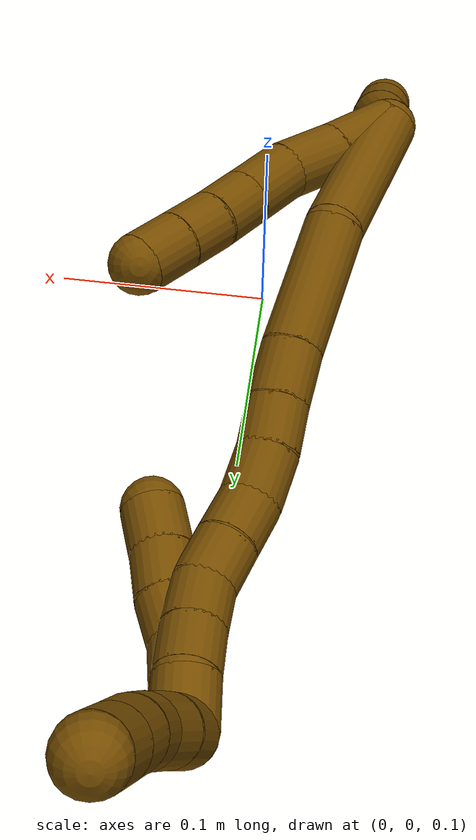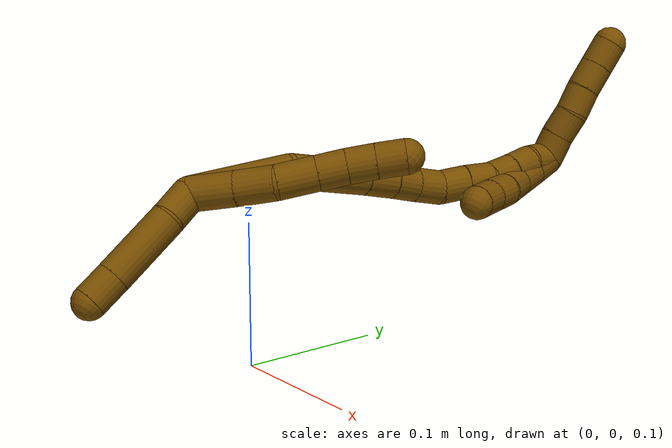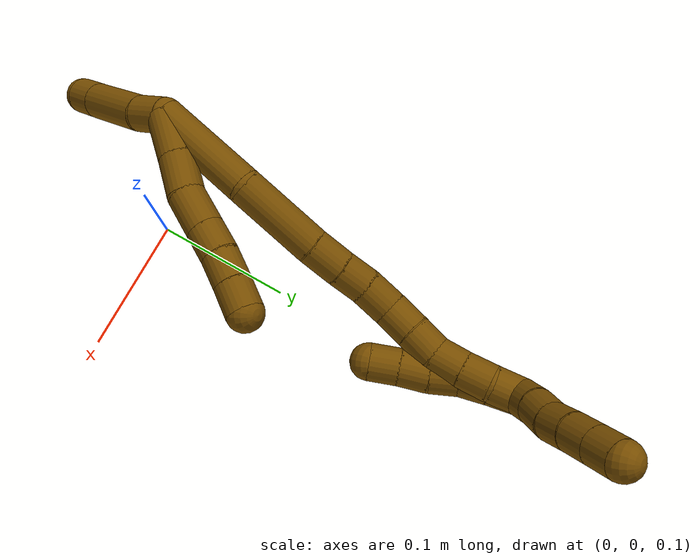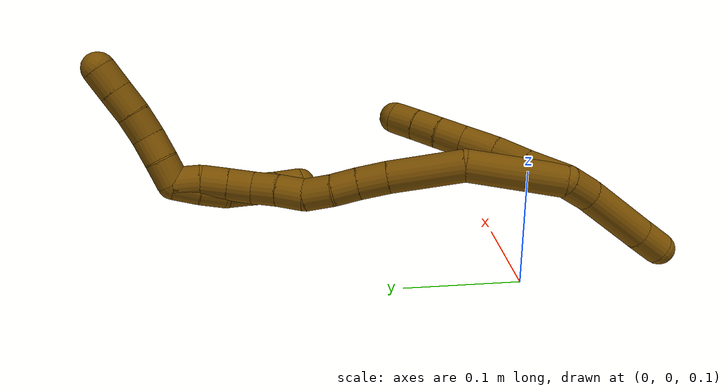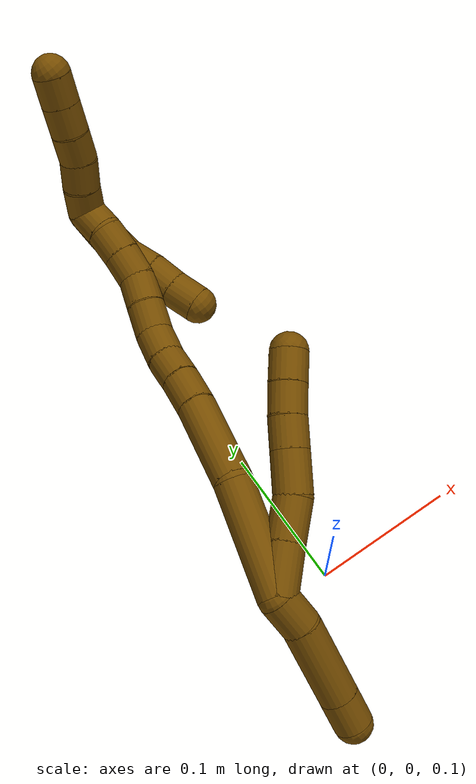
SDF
<sdf version="1.7">
 <world name="default">
  <model name="12">
   <static>0</static>
   <link name="12">
    <collision name="collision-cylinder-e_1_2_8">
     <pose>0.002856 0.013754 0.008246 -1.03072 0.17625 -0.100007</pose>
     <geometry><cylinder><radius>0.0125</radius><length>0.032578</length></cylinder></geometry>
     <surface>
      <friction><ode><mu>1.16</mu><mu2>1.16</mu2><slip1>0</slip1><slip2>0</slip2></ode></friction>
      <contact><ode><kp>1e+06</kp><kd>1</kd><max_vel>0</max_vel><min_depth>0.001</min_depth></ode></contact>
     </surface>
    </collision>
    <visual name="visual-cylinder-e_1_2_8">
     <pose>0.002856 0.013754 0.008246 -1.03072 0.17625 -0.100007</pose>
     <geometry><cylinder><radius>0.0125</radius><length>0.032578</length></cylinder></geometry>
     <material><ambient>0.466667 0.301961 0 1</ambient></material>
    </visual>
    <collision name="collision-cylinder-e_2_8_9">
     <pose>0.008718 0.039119 0.02358 -1.02273 0.217477 -0.122367</pose>
     <geometry><cylinder><radius>0.0125</radius><length>0.027861</length></cylinder></geometry>
     <surface>
      <friction><ode><mu>1.16</mu><mu2>1.16</mu2><slip1>0</slip1><slip2>0</slip2></ode></friction>
      <contact><ode><kp>1e+06</kp><kd>1</kd><max_vel>0</max_vel><min_depth>0.001</min_depth></ode></contact>
     </surface>
    </collision>
    <visual name="visual-cylinder-e_2_8_9">
     <pose>0.008718 0.039119 0.02358 -1.02273 0.217477 -0.122367</pose>
     <geometry><cylinder><radius>0.0125</radius><length>0.027861</length></cylinder></geometry>
     <material><ambient>0.466667 0.301961 0 1</ambient></material>
    </visual>
    <collision name="collision-cylinder-e_3_9_10">
     <pose>0.012378 0.061212 0.03983 -0.852505 0.04698 -0.021337</pose>
     <geometry><cylinder><radius>0.0125</radius><length>0.027877</length></cylinder></geometry>
     <surface>
      <friction><ode><mu>1.16</mu><mu2>1.16</mu2><slip1>0</slip1><slip2>0</slip2></ode></friction>
      <contact><ode><kp>1e+06</kp><kd>1</kd><max_vel>0</max_vel><min_depth>0.001</min_depth></ode></contact>
     </surface>
    </collision>
    <visual name="visual-cylinder-e_3_9_10">
     <pose>0.012378 0.061212 0.03983 -0.852505 0.04698 -0.021337</pose>
     <geometry><cylinder><radius>0.0125</radius><length>0.027877</length></cylinder></geometry>
     <material><ambient>0.466667 0.301961 0 1</ambient></material>
    </visual>
    <collision name="collision-cylinder-e_4_10_11">
     <pose>0.013556 0.079466 0.055841 -0.84841 0.050475 -0.0228</pose>
     <geometry><cylinder><radius>0.0125</radius><length>0.020743</length></cylinder></geometry>
     <surface>
      <friction><ode><mu>1.16</mu><mu2>1.16</mu2><slip1>0</slip1><slip2>0</slip2></ode></friction>
      <contact><ode><kp>1e+06</kp><kd>1</kd><max_vel>0</max_vel><min_depth>0.001</min_depth></ode></contact>
     </surface>
    </collision>
    <visual name="visual-cylinder-e_4_10_11">
     <pose>0.013556 0.079466 0.055841 -0.84841 0.050475 -0.0228</pose>
     <geometry><cylinder><radius>0.0125</radius><length>0.020743</length></cylinder></geometry>
     <material><ambient>0.466667 0.301961 0 1</ambient></material>
    </visual>
    <collision name="collision-cylinder-e_5_11_12">
     <pose>0.01501 0.095297 0.068818 -0.920776 0.091613 -0.045458</pose>
     <geometry><cylinder><radius>0.0125</radius><length>0.020336</length></cylinder></geometry>
     <surface>
      <friction><ode><mu>1.16</mu><mu2>1.16</mu2><slip1>0</slip1><slip2>0</slip2></ode></friction>
      <contact><ode><kp>1e+06</kp><kd>1</kd><max_vel>0</max_vel><min_depth>0.001</min_depth></ode></contact>
     </surface>
    </collision>
    <visual name="visual-cylinder-e_5_11_12">
     <pose>0.01501 0.095297 0.068818 -0.920776 0.091613 -0.045458</pose>
     <geometry><cylinder><radius>0.0125</radius><length>0.020336</length></cylinder></geometry>
     <material><ambient>0.466667 0.301961 0 1</ambient></material>
    </visual>
    <collision name="collision-cylinder-e_6_12_6">
     <pose>0.016934 0.111751 0.080837 -0.958716 0.096684 -0.050285</pose>
     <geometry><cylinder><radius>0.0125</radius><length>0.020605</length></cylinder></geometry>
     <surface>
      <friction><ode><mu>1.16</mu><mu2>1.16</mu2><slip1>0</slip1><slip2>0</slip2></ode></friction>
      <contact><ode><kp>1e+06</kp><kd>1</kd><max_vel>0</max_vel><min_depth>0.001</min_depth></ode></contact>
     </surface>
    </collision>
    <visual name="visual-cylinder-e_6_12_6">
     <pose>0.016934 0.111751 0.080837 -0.958716 0.096684 -0.050285</pose>
     <geometry><cylinder><radius>0.0125</radius><length>0.020605</length></cylinder></geometry>
     <material><ambient>0.466667 0.301961 0 1</ambient></material>
    </visual>
    <collision name="collision-cylinder-e_1_2_13">
     <pose>0.001493 -0.001171 -0.011642 3.04135 0.126922 1.80512</pose>
     <geometry><cylinder><radius>0.0125</radius><length>0.02359</length></cylinder></geometry>
     <surface>
      <friction><ode><mu>1.16</mu><mu2>1.16</mu2><slip1>0</slip1><slip2>0</slip2></ode></friction>
      <contact><ode><kp>1e+06</kp><kd>1</kd><max_vel>0</max_vel><min_depth>0.001</min_depth></ode></contact>
     </surface>
    </collision>
    <visual name="visual-cylinder-e_1_2_13">
     <pose>0.001493 -0.001171 -0.011642 3.04135 0.126922 1.80512</pose>
     <geometry><cylinder><radius>0.0125</radius><length>0.02359</length></cylinder></geometry>
     <material><ambient>0.466667 0.301961 0 1</ambient></material>
    </visual>
    <collision name="collision-cylinder-e_2_13_14">
     <pose>0.001884 -0.007643 -0.049752 2.94391 -0.040811 -0.405942</pose>
     <geometry><cylinder><radius>0.0125</radius><length>0.054034</length></cylinder></geometry>
     <surface>
      <friction><ode><mu>1.16</mu><mu2>1.16</mu2><slip1>0</slip1><slip2>0</slip2></ode></friction>
      <contact><ode><kp>1e+06</kp><kd>1</kd><max_vel>0</max_vel><min_depth>0.001</min_depth></ode></contact>
     </surface>
    </collision>
    <visual name="visual-cylinder-e_2_13_14">
     <pose>0.001884 -0.007643 -0.049752 2.94391 -0.040811 -0.405942</pose>
     <geometry><cylinder><radius>0.0125</radius><length>0.054034</length></cylinder></geometry>
     <material><ambient>0.466667 0.301961 0 1</ambient></material>
    </visual>
    <collision name="collision-cylinder-e_3_14_5">
     <pose>0.000415 -0.015288 -0.087154 2.93048 -0.03278 -0.306991</pose>
     <geometry><cylinder><radius>0.0125</radius><length>0.022376</length></cylinder></geometry>
     <surface>
      <friction><ode><mu>1.16</mu><mu2>1.16</mu2><slip1>0</slip1><slip2>0</slip2></ode></friction>
      <contact><ode><kp>1e+06</kp><kd>1</kd><max_vel>0</max_vel><min_depth>0.001</min_depth></ode></contact>
     </surface>
    </collision>
    <visual name="visual-cylinder-e_3_14_5">
     <pose>0.000415 -0.015288 -0.087154 2.93048 -0.03278 -0.306991</pose>
     <geometry><cylinder><radius>0.0125</radius><length>0.022376</length></cylinder></geometry>
     <material><ambient>0.466667 0.301961 0 1</ambient></material>
    </visual>
    <collision name="collision-cylinder-e_1_2_15">
     <pose>-0.008451 0.023792 0.027299 -0.716875 -0.229263 0.086211</pose>
     <geometry><cylinder><radius>0.0125</radius><length>0.074369</length></cylinder></geometry>
     <surface>
      <friction><ode><mu>1.16</mu><mu2>1.16</mu2><slip1>0</slip1><slip2>0</slip2></ode></friction>
      <contact><ode><kp>1e+06</kp><kd>1</kd><max_vel>0</max_vel><min_depth>0.001</min_depth></ode></contact>
     </surface>
    </collision>
    <visual name="visual-cylinder-e_1_2_15">
     <pose>-0.008451 0.023792 0.027299 -0.716875 -0.229263 0.086211</pose>
     <geometry><cylinder><radius>0.0125</radius><length>0.074369</length></cylinder></geometry>
     <material><ambient>0.466667 0.301961 0 1</ambient></material>
    </visual>
    <collision name="collision-cylinder-e_2_15_16">
     <pose>-0.030236 0.068426 0.070228 -0.927321 -0.473094 0.239911</pose>
     <geometry><cylinder><radius>0.0125</radius><length>0.058533</length></cylinder></geometry>
     <surface>
      <friction><ode><mu>1.16</mu><mu2>1.16</mu2><slip1>0</slip1><slip2>0</slip2></ode></friction>
      <contact><ode><kp>1e+06</kp><kd>1</kd><max_vel>0</max_vel><min_depth>0.001</min_depth></ode></contact>
     </surface>
    </collision>
    <visual name="visual-cylinder-e_2_15_16">
     <pose>-0.030236 0.068426 0.070228 -0.927321 -0.473094 0.239911</pose>
     <geometry><cylinder><radius>0.0125</radius><length>0.058533</length></cylinder></geometry>
     <material><ambient>0.466667 0.301961 0 1</ambient></material>
    </visual>
    <collision name="collision-cylinder-e_3_16_17">
     <pose>-0.049666 0.097206 0.091964 -0.915101 -0.54672 0.274384</pose>
     <geometry><cylinder><radius>0.0125</radius><length>0.023447</length></cylinder></geometry>
     <surface>
      <friction><ode><mu>1.16</mu><mu2>1.16</mu2><slip1>0</slip1><slip2>0</slip2></ode></friction>
      <contact><ode><kp>1e+06</kp><kd>1</kd><max_vel>0</max_vel><min_depth>0.001</min_depth></ode></contact>
     </surface>
    </collision>
    <visual name="visual-cylinder-e_3_16_17">
     <pose>-0.049666 0.097206 0.091964 -0.915101 -0.54672 0.274384</pose>
     <geometry><cylinder><radius>0.0125</radius><length>0.023447</length></cylinder></geometry>
     <material><ambient>0.466667 0.301961 0 1</ambient></material>
    </visual>
    <collision name="collision-cylinder-e_4_17_18">
     <pose>-0.061441 0.111668 0.103144 -0.909856 -0.602149 0.30147</pose>
     <geometry><cylinder><radius>0.0125</radius><length>0.020057</length></cylinder></geometry>
     <surface>
      <friction><ode><mu>1.16</mu><mu2>1.16</mu2><slip1>0</slip1><slip2>0</slip2></ode></friction>
      <contact><ode><kp>1e+06</kp><kd>1</kd><max_vel>0</max_vel><min_depth>0.001</min_depth></ode></contact>
     </surface>
    </collision>
    <visual name="visual-cylinder-e_4_17_18">
     <pose>-0.061441 0.111668 0.103144 -0.909856 -0.602149 0.30147</pose>
     <geometry><cylinder><radius>0.0125</radius><length>0.020057</length></cylinder></geometry>
     <material><ambient>0.466667 0.301961 0 1</ambient></material>
    </visual>
    <collision name="collision-cylinder-e_5_18_19">
     <pose>-0.072214 0.126221 0.11385 -0.95894 -0.478881 0.252508</pose>
     <geometry><cylinder><radius>0.0125</radius><length>0.0221</length></cylinder></geometry>
     <surface>
      <friction><ode><mu>1.16</mu><mu2>1.16</mu2><slip1>0</slip1><slip2>0</slip2></ode></friction>
      <contact><ode><kp>1e+06</kp><kd>1</kd><max_vel>0</max_vel><min_depth>0.001</min_depth></ode></contact>
     </surface>
    </collision>
    <visual name="visual-cylinder-e_5_18_19">
     <pose>-0.072214 0.126221 0.11385 -0.95894 -0.478881 0.252508</pose>
     <geometry><cylinder><radius>0.0125</radius><length>0.0221</length></cylinder></geometry>
     <material><ambient>0.466667 0.301961 0 1</ambient></material>
    </visual>
    <collision name="collision-cylinder-e_6_19_20">
     <pose>-0.079399 0.141434 0.12705 -0.759593 -0.197979 0.079246</pose>
     <geometry><cylinder><radius>0.0125</radius><length>0.021285</length></cylinder></geometry>
     <surface>
      <friction><ode><mu>1.16</mu><mu2>1.16</mu2><slip1>0</slip1><slip2>0</slip2></ode></friction>
      <contact><ode><kp>1e+06</kp><kd>1</kd><max_vel>0</max_vel><min_depth>0.001</min_depth></ode></contact>
     </surface>
    </collision>
    <visual name="visual-cylinder-e_6_19_20">
     <pose>-0.079399 0.141434 0.12705 -0.759593 -0.197979 0.079246</pose>
     <geometry><cylinder><radius>0.0125</radius><length>0.021285</length></cylinder></geometry>
     <material><ambient>0.466667 0.301961 0 1</ambient></material>
    </visual>
    <collision name="collision-cylinder-e_7_20_21">
     <pose>-0.083911 0.155834 0.141261 -0.826497 -0.241857 0.106473</pose>
     <geometry><cylinder><radius>0.0125</radius><length>0.020206</length></cylinder></geometry>
     <surface>
      <friction><ode><mu>1.16</mu><mu2>1.16</mu2><slip1>0</slip1><slip2>0</slip2></ode></friction>
      <contact><ode><kp>1e+06</kp><kd>1</kd><max_vel>0</max_vel><min_depth>0.001</min_depth></ode></contact>
     </surface>
    </collision>
    <visual name="visual-cylinder-e_7_20_21">
     <pose>-0.083911 0.155834 0.141261 -0.826497 -0.241857 0.106473</pose>
     <geometry><cylinder><radius>0.0125</radius><length>0.020206</length></cylinder></geometry>
     <material><ambient>0.466667 0.301961 0 1</ambient></material>
    </visual>
    <collision name="collision-cylinder-e_8_21_22">
     <pose>-0.089632 0.167722 0.15611 -0.517755 -0.336303 0.089848</pose>
     <geometry><cylinder><radius>0.0125</radius><length>0.020003</length></cylinder></geometry>
     <surface>
      <friction><ode><mu>1.16</mu><mu2>1.16</mu2><slip1>0</slip1><slip2>0</slip2></ode></friction>
      <contact><ode><kp>1e+06</kp><kd>1</kd><max_vel>0</max_vel><min_depth>0.001</min_depth></ode></contact>
     </surface>
    </collision>
    <visual name="visual-cylinder-e_8_21_22">
     <pose>-0.089632 0.167722 0.15611 -0.517755 -0.336303 0.089848</pose>
     <geometry><cylinder><radius>0.0125</radius><length>0.020003</length></cylinder></geometry>
     <material><ambient>0.466667 0.301961 0 1</ambient></material>
    </visual>
    <collision name="collision-cylinder-e_9_22_23">
     <pose>-0.0965 0.176523 0.172693 -0.457744 -0.364826 0.08589</pose>
     <geometry><cylinder><radius>0.0125</radius><length>0.02</length></cylinder></geometry>
     <surface>
      <friction><ode><mu>1.16</mu><mu2>1.16</mu2><slip1>0</slip1><slip2>0</slip2></ode></friction>
      <contact><ode><kp>1e+06</kp><kd>1</kd><max_vel>0</max_vel><min_depth>0.001</min_depth></ode></contact>
     </surface>
    </collision>
    <visual name="visual-cylinder-e_9_22_23">
     <pose>-0.0965 0.176523 0.172693 -0.457744 -0.364826 0.08589</pose>
     <geometry><cylinder><radius>0.0125</radius><length>0.02</length></cylinder></geometry>
     <material><ambient>0.466667 0.301961 0 1</ambient></material>
    </visual>
    <collision name="collision-cylinder-e_10_23_1">
     <pose>-0.10543 0.185147 0.188218 -0.561602 -0.565975 0.167349</pose>
     <geometry><cylinder><radius>0.0125</radius><length>0.02</length></cylinder></geometry>
     <surface>
      <friction><ode><mu>1.16</mu><mu2>1.16</mu2><slip1>0</slip1><slip2>0</slip2></ode></friction>
      <contact><ode><kp>1e+06</kp><kd>1</kd><max_vel>0</max_vel><min_depth>0.001</min_depth></ode></contact>
     </surface>
    </collision>
    <visual name="visual-cylinder-e_10_23_1">
     <pose>-0.10543 0.185147 0.188218 -0.561602 -0.565975 0.167349</pose>
     <geometry><cylinder><radius>0.0125</radius><length>0.02</length></cylinder></geometry>
     <material><ambient>0.466667 0.301961 0 1</ambient></material>
    </visual>
    <collision name="collision-cylinder-e_1_1_24">
     <pose>-0.105839 0.189813 0.204047 -0.019738 0.518219 -0.005232</pose>
     <geometry><cylinder><radius>0.0125</radius><length>0.02</length></cylinder></geometry>
     <surface>
      <friction><ode><mu>1.16</mu><mu2>1.16</mu2><slip1>0</slip1><slip2>0</slip2></ode></friction>
      <contact><ode><kp>1e+06</kp><kd>1</kd><max_vel>0</max_vel><min_depth>0.001</min_depth></ode></contact>
     </surface>
    </collision>
    <visual name="visual-cylinder-e_1_1_24">
     <pose>-0.105839 0.189813 0.204047 -0.019738 0.518219 -0.005232</pose>
     <geometry><cylinder><radius>0.0125</radius><length>0.02</length></cylinder></geometry>
     <material><ambient>0.466667 0.301961 0 1</ambient></material>
    </visual>
    <collision name="collision-cylinder-e_2_24_25">
     <pose>-0.095767 0.191332 0.221217 -0.157443 0.537409 -0.043437</pose>
     <geometry><cylinder><radius>0.0125</radius><length>0.02</length></cylinder></geometry>
     <surface>
      <friction><ode><mu>1.16</mu><mu2>1.16</mu2><slip1>0</slip1><slip2>0</slip2></ode></friction>
      <contact><ode><kp>1e+06</kp><kd>1</kd><max_vel>0</max_vel><min_depth>0.001</min_depth></ode></contact>
     </surface>
    </collision>
    <visual name="visual-cylinder-e_2_24_25">
     <pose>-0.095767 0.191332 0.221217 -0.157443 0.537409 -0.043437</pose>
     <geometry><cylinder><radius>0.0125</radius><length>0.02</length></cylinder></geometry>
     <material><ambient>0.466667 0.301961 0 1</ambient></material>
    </visual>
    <collision name="collision-cylinder-e_3_25_26">
     <pose>-0.086589 0.192608 0.23884 0.007752 0.41794 0.001644</pose>
     <geometry><cylinder><radius>0.0125</radius><length>0.02</length></cylinder></geometry>
     <surface>
      <friction><ode><mu>1.16</mu><mu2>1.16</mu2><slip1>0</slip1><slip2>0</slip2></ode></friction>
      <contact><ode><kp>1e+06</kp><kd>1</kd><max_vel>0</max_vel><min_depth>0.001</min_depth></ode></contact>
     </surface>
    </collision>
    <visual name="visual-cylinder-e_3_25_26">
     <pose>-0.086589 0.192608 0.23884 0.007752 0.41794 0.001644</pose>
     <geometry><cylinder><radius>0.0125</radius><length>0.02</length></cylinder></geometry>
     <material><ambient>0.466667 0.301961 0 1</ambient></material>
    </visual>
    <collision name="collision-cylinder-e_4_26_27">
     <pose>-0.079032 0.193266 0.257319 -0.077877 0.357393 -0.014073</pose>
     <geometry><cylinder><radius>0.0125</radius><length>0.02</length></cylinder></geometry>
     <surface>
      <friction><ode><mu>1.16</mu><mu2>1.16</mu2><slip1>0</slip1><slip2>0</slip2></ode></friction>
      <contact><ode><kp>1e+06</kp><kd>1</kd><max_vel>0</max_vel><min_depth>0.001</min_depth></ode></contact>
     </surface>
    </collision>
    <visual name="visual-cylinder-e_4_26_27">
     <pose>-0.079032 0.193266 0.257319 -0.077877 0.357393 -0.014073</pose>
     <geometry><cylinder><radius>0.0125</radius><length>0.02</length></cylinder></geometry>
     <material><ambient>0.466667 0.301961 0 1</ambient></material>
    </visual>
    <collision name="collision-cylinder-e_5_27_4">
     <pose>-0.071965 0.194735 0.275971 -0.079378 0.364939 -0.014654</pose>
     <geometry><cylinder><radius>0.0125</radius><length>0.02</length></cylinder></geometry>
     <surface>
      <friction><ode><mu>1.16</mu><mu2>1.16</mu2><slip1>0</slip1><slip2>0</slip2></ode></friction>
      <contact><ode><kp>1e+06</kp><kd>1</kd><max_vel>0</max_vel><min_depth>0.001</min_depth></ode></contact>
     </surface>
    </collision>
    <visual name="visual-cylinder-e_5_27_4">
     <pose>-0.071965 0.194735 0.275971 -0.079378 0.364939 -0.014654</pose>
     <geometry><cylinder><radius>0.0125</radius><length>0.02</length></cylinder></geometry>
     <material><ambient>0.466667 0.301961 0 1</ambient></material>
    </visual>
    <collision name="collision-cylinder-e_1_1_28">
     <pose>-0.107573 0.18699 0.186273 2.85775 0.327799 1.71653</pose>
     <geometry><cylinder><radius>0.0125</radius><length>0.02</length></cylinder></geometry>
     <surface>
      <friction><ode><mu>1.16</mu><mu2>1.16</mu2><slip1>0</slip1><slip2>0</slip2></ode></friction>
      <contact><ode><kp>1e+06</kp><kd>1</kd><max_vel>0</max_vel><min_depth>0.001</min_depth></ode></contact>
     </surface>
    </collision>
    <visual name="visual-cylinder-e_1_1_28">
     <pose>-0.107573 0.18699 0.186273 2.85775 0.327799 1.71653</pose>
     <geometry><cylinder><radius>0.0125</radius><length>0.02</length></cylinder></geometry>
     <material><ambient>0.466667 0.301961 0 1</ambient></material>
    </visual>
    <collision name="collision-cylinder-e_2_28_29">
     <pose>-0.100379 0.181844 0.168354 2.86624 0.40874 1.96305</pose>
     <geometry><cylinder><radius>0.0125</radius><length>0.02</length></cylinder></geometry>
     <surface>
      <friction><ode><mu>1.16</mu><mu2>1.16</mu2><slip1>0</slip1><slip2>0</slip2></ode></friction>
      <contact><ode><kp>1e+06</kp><kd>1</kd><max_vel>0</max_vel><min_depth>0.001</min_depth></ode></contact>
     </surface>
    </collision>
    <visual name="visual-cylinder-e_2_28_29">
     <pose>-0.100379 0.181844 0.168354 2.86624 0.40874 1.96305</pose>
     <geometry><cylinder><radius>0.0125</radius><length>0.02</length></cylinder></geometry>
     <material><ambient>0.466667 0.301961 0 1</ambient></material>
    </visual>
    <collision name="collision-cylinder-e_3_29_30">
     <pose>-0.09031 0.178011 0.151709 2.97204 0.655404 2.65169</pose>
     <geometry><cylinder><radius>0.0125</radius><length>0.02</length></cylinder></geometry>
     <surface>
      <friction><ode><mu>1.16</mu><mu2>1.16</mu2><slip1>0</slip1><slip2>0</slip2></ode></friction>
      <contact><ode><kp>1e+06</kp><kd>1</kd><max_vel>0</max_vel><min_depth>0.001</min_depth></ode></contact>
     </surface>
    </collision>
    <visual name="visual-cylinder-e_3_29_30">
     <pose>-0.09031 0.178011 0.151709 2.97204 0.655404 2.65169</pose>
     <geometry><cylinder><radius>0.0125</radius><length>0.02</length></cylinder></geometry>
     <material><ambient>0.466667 0.301961 0 1</ambient></material>
    </visual>
    <collision name="collision-cylinder-e_4_30_31">
     <pose>-0.078422 0.173881 0.136237 2.79186 0.617836 2.1304</pose>
     <geometry><cylinder><radius>0.0125</radius><length>0.02</length></cylinder></geometry>
     <surface>
      <friction><ode><mu>1.16</mu><mu2>1.16</mu2><slip1>0</slip1><slip2>0</slip2></ode></friction>
      <contact><ode><kp>1e+06</kp><kd>1</kd><max_vel>0</max_vel><min_depth>0.001</min_depth></ode></contact>
     </surface>
    </collision>
    <visual name="visual-cylinder-e_4_30_31">
     <pose>-0.078422 0.173881 0.136237 2.79186 0.617836 2.1304</pose>
     <geometry><cylinder><radius>0.0125</radius><length>0.02</length></cylinder></geometry>
     <material><ambient>0.466667 0.301961 0 1</ambient></material>
    </visual>
    <collision name="collision-cylinder-e_5_31_3">
     <pose>-0.066273 0.16884 0.121193 2.84622 0.68879 2.35526</pose>
     <geometry><cylinder><radius>0.0125</radius><length>0.02</length></cylinder></geometry>
     <surface>
      <friction><ode><mu>1.16</mu><mu2>1.16</mu2><slip1>0</slip1><slip2>0</slip2></ode></friction>
      <contact><ode><kp>1e+06</kp><kd>1</kd><max_vel>0</max_vel><min_depth>0.001</min_depth></ode></contact>
     </surface>
    </collision>
    <visual name="visual-cylinder-e_5_31_3">
     <pose>-0.066273 0.16884 0.121193 2.84622 0.68879 2.35526</pose>
     <geometry><cylinder><radius>0.0125</radius><length>0.02</length></cylinder></geometry>
     <material><ambient>0.466667 0.301961 0 1</ambient></material>
    </visual>
    <collision name="collision-sphere-3">
     <pose>-0.059917 0.166593 0.113808 0 -0 0</pose>
     <geometry><sphere><radius>0.0125</radius></sphere></geometry>
     <surface>
      <friction><ode><mu>1.16</mu><mu2>1.16</mu2><slip1>0</slip1><slip2>0</slip2></ode></friction>
      <contact><ode><kp>1e+06</kp><kd>1</kd><max_vel>0</max_vel><min_depth>0.001</min_depth></ode></contact>
     </surface>
    </collision>
    <visual name="visual-sphere-3">
     <pose>-0.059917 0.166593 0.113808 0 -0 0</pose>
     <geometry><sphere><radius>0.0125</radius></sphere></geometry>
     <material><ambient>0.466667 0.301961 0 1</ambient></material>
    </visual>
    <collision name="collision-sphere-31">
     <pose>-0.072629 0.171088 0.128579 0 -0 0</pose>
     <geometry><sphere><radius>0.0125</radius></sphere></geometry>
     <surface>
      <friction><ode><mu>1.16</mu><mu2>1.16</mu2><slip1>0</slip1><slip2>0</slip2></ode></friction>
      <contact><ode><kp>1e+06</kp><kd>1</kd><max_vel>0</max_vel><min_depth>0.001</min_depth></ode></contact>
     </surface>
    </collision>
    <visual name="visual-sphere-31">
     <pose>-0.072629 0.171088 0.128579 0 -0 0</pose>
     <geometry><sphere><radius>0.0125</radius></sphere></geometry>
     <material><ambient>0.466667 0.301961 0 1</ambient></material>
    </visual>
    <collision name="collision-sphere-30">
     <pose>-0.084215 0.176674 0.143895 0 -0 0</pose>
     <geometry><sphere><radius>0.0125</radius></sphere></geometry>
     <surface>
      <friction><ode><mu>1.16</mu><mu2>1.16</mu2><slip1>0</slip1><slip2>0</slip2></ode></friction>
      <contact><ode><kp>1e+06</kp><kd>1</kd><max_vel>0</max_vel><min_depth>0.001</min_depth></ode></contact>
     </surface>
    </collision>
    <visual name="visual-sphere-30">
     <pose>-0.084215 0.176674 0.143895 0 -0 0</pose>
     <geometry><sphere><radius>0.0125</radius></sphere></geometry>
     <material><ambient>0.466667 0.301961 0 1</ambient></material>
    </visual>
    <collision name="collision-sphere-29">
     <pose>-0.096404 0.179349 0.159524 0 -0 0</pose>
     <geometry><sphere><radius>0.0125</radius></sphere></geometry>
     <surface>
      <friction><ode><mu>1.16</mu><mu2>1.16</mu2><slip1>0</slip1><slip2>0</slip2></ode></friction>
      <contact><ode><kp>1e+06</kp><kd>1</kd><max_vel>0</max_vel><min_depth>0.001</min_depth></ode></contact>
     </surface>
    </collision>
    <visual name="visual-sphere-29">
     <pose>-0.096404 0.179349 0.159524 0 -0 0</pose>
     <geometry><sphere><radius>0.0125</radius></sphere></geometry>
     <material><ambient>0.466667 0.301961 0 1</ambient></material>
    </visual>
    <collision name="collision-sphere-28">
     <pose>-0.104353 0.184339 0.177185 0 -0 0</pose>
     <geometry><sphere><radius>0.0125</radius></sphere></geometry>
     <surface>
      <friction><ode><mu>1.16</mu><mu2>1.16</mu2><slip1>0</slip1><slip2>0</slip2></ode></friction>
      <contact><ode><kp>1e+06</kp><kd>1</kd><max_vel>0</max_vel><min_depth>0.001</min_depth></ode></contact>
     </surface>
    </collision>
    <visual name="visual-sphere-28">
     <pose>-0.104353 0.184339 0.177185 0 -0 0</pose>
     <geometry><sphere><radius>0.0125</radius></sphere></geometry>
     <material><ambient>0.466667 0.301961 0 1</ambient></material>
    </visual>
    <collision name="collision-sphere-4">
     <pose>-0.068396 0.195476 0.285283 0 -0 0</pose>
     <geometry><sphere><radius>0.0125</radius></sphere></geometry>
     <surface>
      <friction><ode><mu>1.16</mu><mu2>1.16</mu2><slip1>0</slip1><slip2>0</slip2></ode></friction>
      <contact><ode><kp>1e+06</kp><kd>1</kd><max_vel>0</max_vel><min_depth>0.001</min_depth></ode></contact>
     </surface>
    </collision>
    <visual name="visual-sphere-4">
     <pose>-0.068396 0.195476 0.285283 0 -0 0</pose>
     <geometry><sphere><radius>0.0125</radius></sphere></geometry>
     <material><ambient>0.466667 0.301961 0 1</ambient></material>
    </visual>
    <collision name="collision-sphere-27">
     <pose>-0.075533 0.193994 0.266659 0 -0 0</pose>
     <geometry><sphere><radius>0.0125</radius></sphere></geometry>
     <surface>
      <friction><ode><mu>1.16</mu><mu2>1.16</mu2><slip1>0</slip1><slip2>0</slip2></ode></friction>
      <contact><ode><kp>1e+06</kp><kd>1</kd><max_vel>0</max_vel><min_depth>0.001</min_depth></ode></contact>
     </surface>
    </collision>
    <visual name="visual-sphere-27">
     <pose>-0.075533 0.193994 0.266659 0 -0 0</pose>
     <geometry><sphere><radius>0.0125</radius></sphere></geometry>
     <material><ambient>0.466667 0.301961 0 1</ambient></material>
    </visual>
    <collision name="collision-sphere-26">
     <pose>-0.08253 0.192537 0.247979 0 -0 0</pose>
     <geometry><sphere><radius>0.0125</radius></sphere></geometry>
     <surface>
      <friction><ode><mu>1.16</mu><mu2>1.16</mu2><slip1>0</slip1><slip2>0</slip2></ode></friction>
      <contact><ode><kp>1e+06</kp><kd>1</kd><max_vel>0</max_vel><min_depth>0.001</min_depth></ode></contact>
     </surface>
    </collision>
    <visual name="visual-sphere-26">
     <pose>-0.08253 0.192537 0.247979 0 -0 0</pose>
     <geometry><sphere><radius>0.0125</radius></sphere></geometry>
     <material><ambient>0.466667 0.301961 0 1</ambient></material>
    </visual>
    <collision name="collision-sphere-25">
     <pose>-0.090648 0.192678 0.229701 0 -0 0</pose>
     <geometry><sphere><radius>0.0125</radius></sphere></geometry>
     <surface>
      <friction><ode><mu>1.16</mu><mu2>1.16</mu2><slip1>0</slip1><slip2>0</slip2></ode></friction>
      <contact><ode><kp>1e+06</kp><kd>1</kd><max_vel>0</max_vel><min_depth>0.001</min_depth></ode></contact>
     </surface>
    </collision>
    <visual name="visual-sphere-25">
     <pose>-0.090648 0.192678 0.229701 0 -0 0</pose>
     <geometry><sphere><radius>0.0125</radius></sphere></geometry>
     <material><ambient>0.466667 0.301961 0 1</ambient></material>
    </visual>
    <collision name="collision-sphere-24">
     <pose>-0.100886 0.189985 0.212733 0 -0 0</pose>
     <geometry><sphere><radius>0.0125</radius></sphere></geometry>
     <surface>
      <friction><ode><mu>1.16</mu><mu2>1.16</mu2><slip1>0</slip1><slip2>0</slip2></ode></friction>
      <contact><ode><kp>1e+06</kp><kd>1</kd><max_vel>0</max_vel><min_depth>0.001</min_depth></ode></contact>
     </surface>
    </collision>
    <visual name="visual-sphere-24">
     <pose>-0.100886 0.189985 0.212733 0 -0 0</pose>
     <geometry><sphere><radius>0.0125</radius></sphere></geometry>
     <material><ambient>0.466667 0.301961 0 1</ambient></material>
    </visual>
    <collision name="collision-sphere-1">
     <pose>-0.110793 0.189642 0.195362 0 -0 0</pose>
     <geometry><sphere><radius>0.0125</radius></sphere></geometry>
     <surface>
      <friction><ode><mu>1.16</mu><mu2>1.16</mu2><slip1>0</slip1><slip2>0</slip2></ode></friction>
      <contact><ode><kp>1e+06</kp><kd>1</kd><max_vel>0</max_vel><min_depth>0.001</min_depth></ode></contact>
     </surface>
    </collision>
    <visual name="visual-sphere-1">
     <pose>-0.110793 0.189642 0.195362 0 -0 0</pose>
     <geometry><sphere><radius>0.0125</radius></sphere></geometry>
     <material><ambient>0.466667 0.301961 0 1</ambient></material>
    </visual>
    <collision name="collision-sphere-23">
     <pose>-0.100068 0.180652 0.181074 0 -0 0</pose>
     <geometry><sphere><radius>0.0125</radius></sphere></geometry>
     <surface>
      <friction><ode><mu>1.16</mu><mu2>1.16</mu2><slip1>0</slip1><slip2>0</slip2></ode></friction>
      <contact><ode><kp>1e+06</kp><kd>1</kd><max_vel>0</max_vel><min_depth>0.001</min_depth></ode></contact>
     </surface>
    </collision>
    <visual name="visual-sphere-23">
     <pose>-0.100068 0.180652 0.181074 0 -0 0</pose>
     <geometry><sphere><radius>0.0125</radius></sphere></geometry>
     <material><ambient>0.466667 0.301961 0 1</ambient></material>
    </visual>
    <collision name="collision-sphere-22">
     <pose>-0.092932 0.172395 0.164313 0 -0 0</pose>
     <geometry><sphere><radius>0.0125</radius></sphere></geometry>
     <surface>
      <friction><ode><mu>1.16</mu><mu2>1.16</mu2><slip1>0</slip1><slip2>0</slip2></ode></friction>
      <contact><ode><kp>1e+06</kp><kd>1</kd><max_vel>0</max_vel><min_depth>0.001</min_depth></ode></contact>
     </surface>
    </collision>
    <visual name="visual-sphere-22">
     <pose>-0.092932 0.172395 0.164313 0 -0 0</pose>
     <geometry><sphere><radius>0.0125</radius></sphere></geometry>
     <material><ambient>0.466667 0.301961 0 1</ambient></material>
    </visual>
    <collision name="collision-sphere-21">
     <pose>-0.086331 0.16305 0.147906 0 -0 0</pose>
     <geometry><sphere><radius>0.0125</radius></sphere></geometry>
     <surface>
      <friction><ode><mu>1.16</mu><mu2>1.16</mu2><slip1>0</slip1><slip2>0</slip2></ode></friction>
      <contact><ode><kp>1e+06</kp><kd>1</kd><max_vel>0</max_vel><min_depth>0.001</min_depth></ode></contact>
     </surface>
    </collision>
    <visual name="visual-sphere-21">
     <pose>-0.086331 0.16305 0.147906 0 -0 0</pose>
     <geometry><sphere><radius>0.0125</radius></sphere></geometry>
     <material><ambient>0.466667 0.301961 0 1</ambient></material>
    </visual>
    <collision name="collision-sphere-12">
     <pose>0.01594 0.103358 0.074945 0 -0 0</pose>
     <geometry><sphere><radius>0.0125</radius></sphere></geometry>
     <surface>
      <friction><ode><mu>1.16</mu><mu2>1.16</mu2><slip1>0</slip1><slip2>0</slip2></ode></friction>
      <contact><ode><kp>1e+06</kp><kd>1</kd><max_vel>0</max_vel><min_depth>0.001</min_depth></ode></contact>
     </surface>
    </collision>
    <visual name="visual-sphere-12">
     <pose>0.01594 0.103358 0.074945 0 -0 0</pose>
     <geometry><sphere><radius>0.0125</radius></sphere></geometry>
     <material><ambient>0.466667 0.301961 0 1</ambient></material>
    </visual>
    <collision name="collision-sphere-11">
     <pose>0.014079 0.087237 0.06269 0 -0 0</pose>
     <geometry><sphere><radius>0.0125</radius></sphere></geometry>
     <surface>
      <friction><ode><mu>1.16</mu><mu2>1.16</mu2><slip1>0</slip1><slip2>0</slip2></ode></friction>
      <contact><ode><kp>1e+06</kp><kd>1</kd><max_vel>0</max_vel><min_depth>0.001</min_depth></ode></contact>
     </surface>
    </collision>
    <visual name="visual-sphere-11">
     <pose>0.014079 0.087237 0.06269 0 -0 0</pose>
     <geometry><sphere><radius>0.0125</radius></sphere></geometry>
     <material><ambient>0.466667 0.301961 0 1</ambient></material>
    </visual>
    <collision name="collision-sphere-10">
     <pose>0.013033 0.071695 0.048993 0 -0 0</pose>
     <geometry><sphere><radius>0.0125</radius></sphere></geometry>
     <surface>
      <friction><ode><mu>1.16</mu><mu2>1.16</mu2><slip1>0</slip1><slip2>0</slip2></ode></friction>
      <contact><ode><kp>1e+06</kp><kd>1</kd><max_vel>0</max_vel><min_depth>0.001</min_depth></ode></contact>
     </surface>
    </collision>
    <visual name="visual-sphere-10">
     <pose>0.013033 0.071695 0.048993 0 -0 0</pose>
     <geometry><sphere><radius>0.0125</radius></sphere></geometry>
     <material><ambient>0.466667 0.301961 0 1</ambient></material>
    </visual>
    <collision name="collision-sphere-9">
     <pose>0.011724 0.050729 0.030667 0 -0 0</pose>
     <geometry><sphere><radius>0.0125</radius></sphere></geometry>
     <surface>
      <friction><ode><mu>1.16</mu><mu2>1.16</mu2><slip1>0</slip1><slip2>0</slip2></ode></friction>
      <contact><ode><kp>1e+06</kp><kd>1</kd><max_vel>0</max_vel><min_depth>0.001</min_depth></ode></contact>
     </surface>
    </collision>
    <visual name="visual-sphere-9">
     <pose>0.011724 0.050729 0.030667 0 -0 0</pose>
     <geometry><sphere><radius>0.0125</radius></sphere></geometry>
     <material><ambient>0.466667 0.301961 0 1</ambient></material>
    </visual>
    <collision name="collision-sphere-2">
     <geometry><sphere><radius>0.0125</radius></sphere></geometry>
     <surface>
      <friction><ode><mu>1.16</mu><mu2>1.16</mu2><slip1>0</slip1><slip2>0</slip2></ode></friction>
      <contact><ode><kp>1e+06</kp><kd>1</kd><max_vel>0</max_vel><min_depth>0.001</min_depth></ode></contact>
     </surface>
    </collision>
    <visual name="visual-sphere-2">
     <geometry><sphere><radius>0.0125</radius></sphere></geometry>
     <material><ambient>0.466667 0.301961 0 1</ambient></material>
    </visual>
    <collision name="collision-sphere-19">
     <pose>-0.077305 0.134249 0.119484 0 -0 0</pose>
     <geometry><sphere><radius>0.0125</radius></sphere></geometry>
     <surface>
      <friction><ode><mu>1.16</mu><mu2>1.16</mu2><slip1>0</slip1><slip2>0</slip2></ode></friction>
      <contact><ode><kp>1e+06</kp><kd>1</kd><max_vel>0</max_vel><min_depth>0.001</min_depth></ode></contact>
     </surface>
    </collision>
    <visual name="visual-sphere-19">
     <pose>-0.077305 0.134249 0.119484 0 -0 0</pose>
     <geometry><sphere><radius>0.0125</radius></sphere></geometry>
     <material><ambient>0.466667 0.301961 0 1</ambient></material>
    </visual>
    <collision name="collision-sphere-8">
     <pose>0.005712 0.027509 0.016492 0 -0 0</pose>
     <geometry><sphere><radius>0.0125</radius></sphere></geometry>
     <surface>
      <friction><ode><mu>1.16</mu><mu2>1.16</mu2><slip1>0</slip1><slip2>0</slip2></ode></friction>
      <contact><ode><kp>1e+06</kp><kd>1</kd><max_vel>0</max_vel><min_depth>0.001</min_depth></ode></contact>
     </surface>
    </collision>
    <visual name="visual-sphere-8">
     <pose>0.005712 0.027509 0.016492 0 -0 0</pose>
     <geometry><sphere><radius>0.0125</radius></sphere></geometry>
     <material><ambient>0.466667 0.301961 0 1</ambient></material>
    </visual>
    <collision name="collision-sphere-6">
     <pose>0.017929 0.120143 0.086729 0 -0 0</pose>
     <geometry><sphere><radius>0.0125</radius></sphere></geometry>
     <surface>
      <friction><ode><mu>1.16</mu><mu2>1.16</mu2><slip1>0</slip1><slip2>0</slip2></ode></friction>
      <contact><ode><kp>1e+06</kp><kd>1</kd><max_vel>0</max_vel><min_depth>0.001</min_depth></ode></contact>
     </surface>
    </collision>
    <visual name="visual-sphere-6">
     <pose>0.017929 0.120143 0.086729 0 -0 0</pose>
     <geometry><sphere><radius>0.0125</radius></sphere></geometry>
     <material><ambient>0.466667 0.301961 0 1</ambient></material>
    </visual>
    <collision name="collision-sphere-13">
     <pose>0.002986 -0.002342 -0.023283 0 -0 0</pose>
     <geometry><sphere><radius>0.0125</radius></sphere></geometry>
     <surface>
      <friction><ode><mu>1.16</mu><mu2>1.16</mu2><slip1>0</slip1><slip2>0</slip2></ode></friction>
      <contact><ode><kp>1e+06</kp><kd>1</kd><max_vel>0</max_vel><min_depth>0.001</min_depth></ode></contact>
     </surface>
    </collision>
    <visual name="visual-sphere-13">
     <pose>0.002986 -0.002342 -0.023283 0 -0 0</pose>
     <geometry><sphere><radius>0.0125</radius></sphere></geometry>
     <material><ambient>0.466667 0.301961 0 1</ambient></material>
    </visual>
    <collision name="collision-sphere-14">
     <pose>0.000782 -0.012945 -0.07622 0 -0 0</pose>
     <geometry><sphere><radius>0.0125</radius></sphere></geometry>
     <surface>
      <friction><ode><mu>1.16</mu><mu2>1.16</mu2><slip1>0</slip1><slip2>0</slip2></ode></friction>
      <contact><ode><kp>1e+06</kp><kd>1</kd><max_vel>0</max_vel><min_depth>0.001</min_depth></ode></contact>
     </surface>
    </collision>
    <visual name="visual-sphere-14">
     <pose>0.000782 -0.012945 -0.07622 0 -0 0</pose>
     <geometry><sphere><radius>0.0125</radius></sphere></geometry>
     <material><ambient>0.466667 0.301961 0 1</ambient></material>
    </visual>
    <collision name="collision-sphere-5">
     <pose>4.8e-05 -0.017631 -0.098088 0 -0 0</pose>
     <geometry><sphere><radius>0.0125</radius></sphere></geometry>
     <surface>
      <friction><ode><mu>1.16</mu><mu2>1.16</mu2><slip1>0</slip1><slip2>0</slip2></ode></friction>
      <contact><ode><kp>1e+06</kp><kd>1</kd><max_vel>0</max_vel><min_depth>0.001</min_depth></ode></contact>
     </surface>
    </collision>
    <visual name="visual-sphere-5">
     <pose>4.8e-05 -0.017631 -0.098088 0 -0 0</pose>
     <geometry><sphere><radius>0.0125</radius></sphere></geometry>
     <material><ambient>0.466667 0.301961 0 1</ambient></material>
    </visual>
    <collision name="collision-sphere-15">
     <pose>-0.016901 0.047584 0.054597 0 -0 0</pose>
     <geometry><sphere><radius>0.0125</radius></sphere></geometry>
     <surface>
      <friction><ode><mu>1.16</mu><mu2>1.16</mu2><slip1>0</slip1><slip2>0</slip2></ode></friction>
      <contact><ode><kp>1e+06</kp><kd>1</kd><max_vel>0</max_vel><min_depth>0.001</min_depth></ode></contact>
     </surface>
    </collision>
    <visual name="visual-sphere-15">
     <pose>-0.016901 0.047584 0.054597 0 -0 0</pose>
     <geometry><sphere><radius>0.0125</radius></sphere></geometry>
     <material><ambient>0.466667 0.301961 0 1</ambient></material>
    </visual>
    <collision name="collision-sphere-16">
     <pose>-0.043571 0.089268 0.085858 0 -0 0</pose>
     <geometry><sphere><radius>0.0125</radius></sphere></geometry>
     <surface>
      <friction><ode><mu>1.16</mu><mu2>1.16</mu2><slip1>0</slip1><slip2>0</slip2></ode></friction>
      <contact><ode><kp>1e+06</kp><kd>1</kd><max_vel>0</max_vel><min_depth>0.001</min_depth></ode></contact>
     </surface>
    </collision>
    <visual name="visual-sphere-16">
     <pose>-0.043571 0.089268 0.085858 0 -0 0</pose>
     <geometry><sphere><radius>0.0125</radius></sphere></geometry>
     <material><ambient>0.466667 0.301961 0 1</ambient></material>
    </visual>
    <collision name="collision-sphere-17">
     <pose>-0.055761 0.105144 0.09807 0 -0 0</pose>
     <geometry><sphere><radius>0.0125</radius></sphere></geometry>
     <surface>
      <friction><ode><mu>1.16</mu><mu2>1.16</mu2><slip1>0</slip1><slip2>0</slip2></ode></friction>
      <contact><ode><kp>1e+06</kp><kd>1</kd><max_vel>0</max_vel><min_depth>0.001</min_depth></ode></contact>
     </surface>
    </collision>
    <visual name="visual-sphere-17">
     <pose>-0.055761 0.105144 0.09807 0 -0 0</pose>
     <geometry><sphere><radius>0.0125</radius></sphere></geometry>
     <material><ambient>0.466667 0.301961 0 1</ambient></material>
    </visual>
    <collision name="collision-sphere-18">
     <pose>-0.067122 0.118193 0.108217 0 -0 0</pose>
     <geometry><sphere><radius>0.0125</radius></sphere></geometry>
     <surface>
      <friction><ode><mu>1.16</mu><mu2>1.16</mu2><slip1>0</slip1><slip2>0</slip2></ode></friction>
      <contact><ode><kp>1e+06</kp><kd>1</kd><max_vel>0</max_vel><min_depth>0.001</min_depth></ode></contact>
     </surface>
    </collision>
    <visual name="visual-sphere-18">
     <pose>-0.067122 0.118193 0.108217 0 -0 0</pose>
     <geometry><sphere><radius>0.0125</radius></sphere></geometry>
     <material><ambient>0.466667 0.301961 0 1</ambient></material>
    </visual>
    <collision name="collision-sphere-20">
     <pose>-0.081492 0.148619 0.134616 0 -0 0</pose>
     <geometry><sphere><radius>0.0125</radius></sphere></geometry>
     <surface>
      <friction><ode><mu>1.16</mu><mu2>1.16</mu2><slip1>0</slip1><slip2>0</slip2></ode></friction>
      <contact><ode><kp>1e+06</kp><kd>1</kd><max_vel>0</max_vel><min_depth>0.001</min_depth></ode></contact>
     </surface>
    </collision>
    <visual name="visual-sphere-20">
     <pose>-0.081492 0.148619 0.134616 0 -0 0</pose>
     <geometry><sphere><radius>0.0125</radius></sphere></geometry>
     <material><ambient>0.466667 0.301961 0 1</ambient></material>
    </visual>
    <inertial>
     <pose>-0.041984 0.100277 0.092468 0 -0 0</pose>
     <mass>0.75</mass>
     <inertia>
      <ixx>0.000105</ixx>
      <ixy>0</ixy>
      <ixz>0</ixz>
      <iyy>8.6e-05</iyy>
      <iyz>0</iyz>
      <izz>-2.3e-05</izz>
     </inertia>
    </inertial>
   </link>
   <pose>-0.051451 -0.013214 0.211352 -0.498717 -0.687435 -0.647791</pose>
  </model>
 </world>
</sdf>
